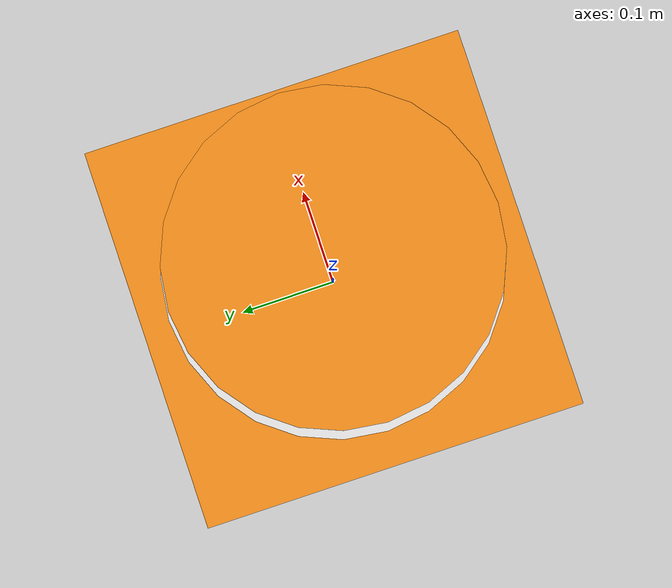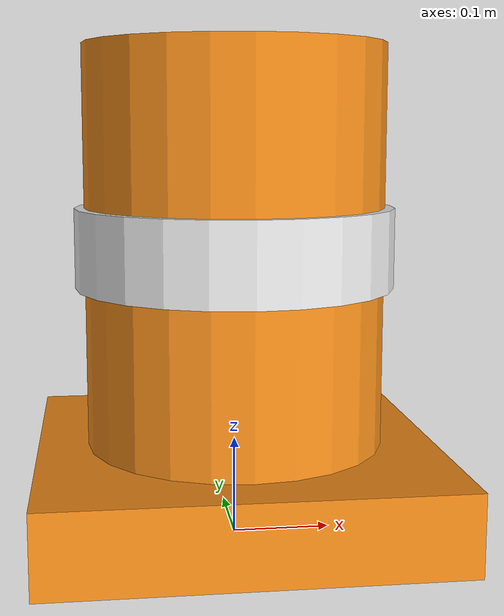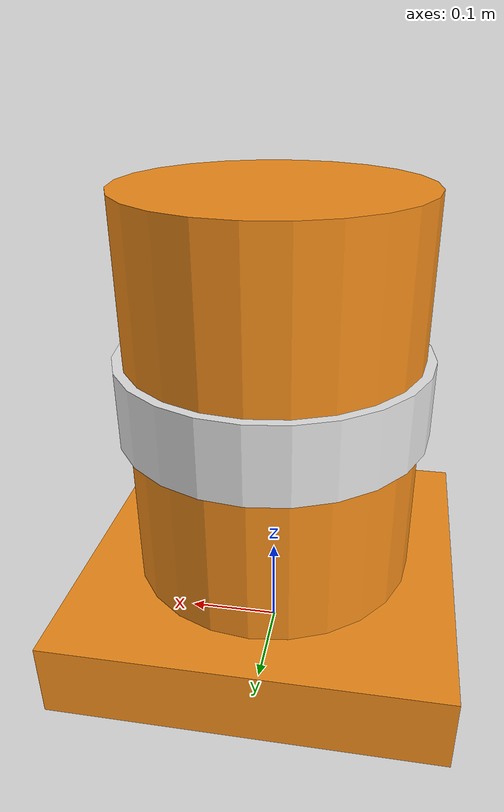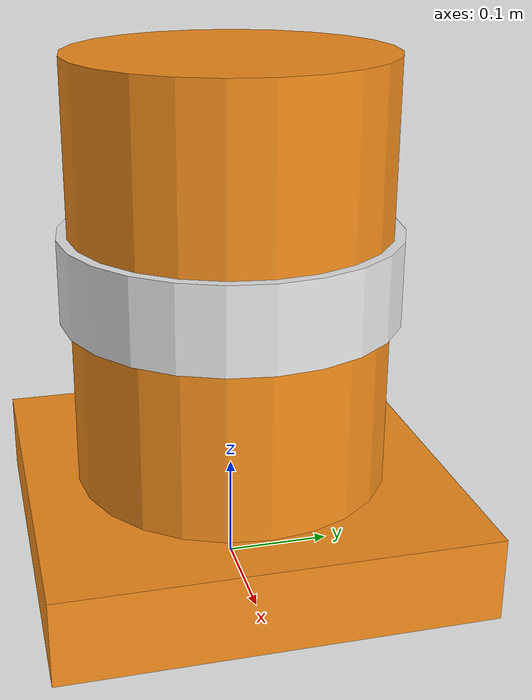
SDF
<?xml version="1.0"?>
<sdf version="1.9">
  <model name="traffic_cone">
    <static>true</static>
    <link name="main">
      <collision name="col">
        <geometry><box><size>0.4 0.4 0.5</size></box></geometry>
      </collision>
      <visual name="cone_base">
        <pose>0 0 0.06 0 0 0</pose>
        <geometry><box><size>0.4 0.4 0.08</size></box></geometry>
        <material>
          <ambient>0.9 0.5 0.05 1</ambient>
          <diffuse>0.95 0.55 0.1 1</diffuse>
          <specular>0.15 0.08 0.02 1</specular>
        </material>
      </visual>
      <visual name="cone_body">
        <pose>0 0 0.3 0 0 0</pose>
        <geometry><cylinder><radius>0.15</radius><length>0.4</length></cylinder></geometry>
        <material>
          <ambient>0.9 0.5 0.05 1</ambient>
          <diffuse>0.95 0.55 0.1 1</diffuse>
          <specular>0.1 0.05 0.01 1</specular>
        </material>
      </visual>
      <!-- White reflective band -->
      <visual name="reflective_band">
        <pose>0 0 0.3 0 0 0</pose>
        <geometry><cylinder><radius>0.16</radius><length>0.08</length></cylinder></geometry>
        <material>
          <ambient>0.85 0.85 0.85 1</ambient>
          <diffuse>0.9 0.9 0.9 1</diffuse>
          <emissive>0.1 0.1 0.1 1</emissive>
        </material>
      </visual>
    </link>
  </model>
</sdf>
